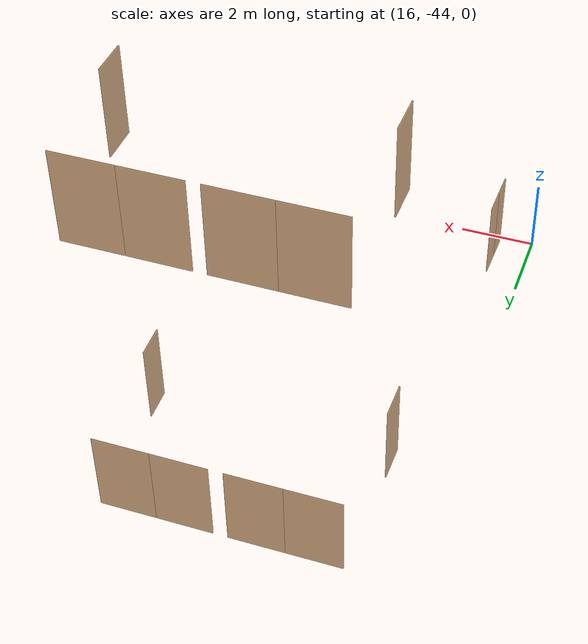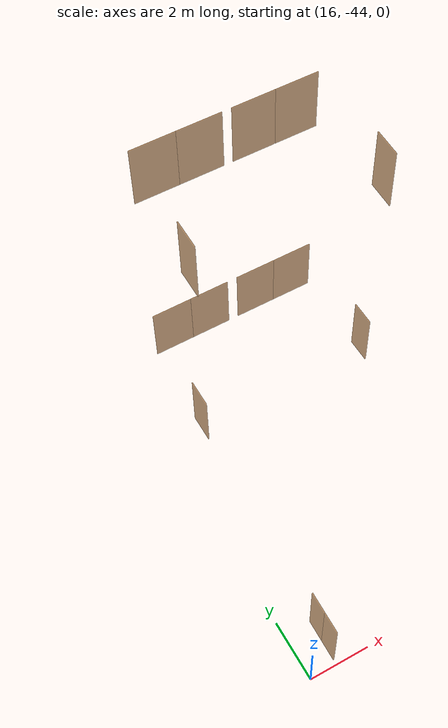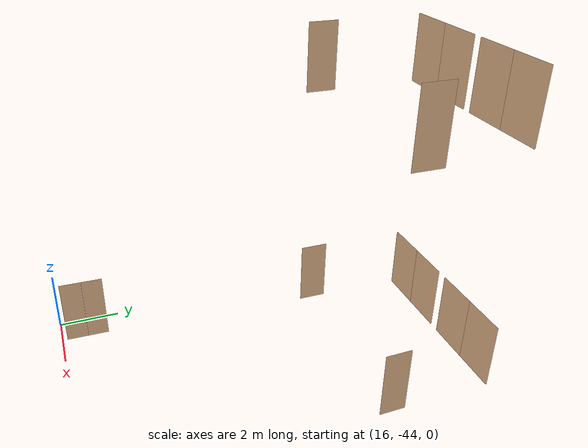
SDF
<sdf version="1.7">
 <world name="sim_world">
  <model name="porta5">
   <pose>18.80251686306724 -31.607002671838153 0.0 0 0 -3.1385629627547886</pose>
   <link name="right">
    <pose>0.7022943984993862 0 1.11 0 0 0</pose>
    <visual name="right_visual">
     <geometry><box><size>1.3945887969987725 0.03 2.2</size></box></geometry>
     <material>
      <ambient>0.5 0.25 0 0.6</ambient>
      <diffuse>0.5 0.25 0 0.6</diffuse>
      <pbr><metal><metalness>0.0</metalness></metal></pbr>
     </material>
    </visual>
    <collision name="right_collision">
     <geometry><box><size>1.3945887969987725 0.03 2.2</size></box></geometry>
     <surface><contact><collide_bitmask>0x02</collide_bitmask></contact></surface>
    </collision>
    <inertial>
     <mass>50.0</mass>
     <inertia><ixx>20.17041666666667</ixx><iyy>28.270324636310352</iyy><izz>8.107407969643681</izz></inertia>
    </inertial>
   </link>
   <joint name="right_joint" type="revolute">
    <parent>world</parent>
    <child>right</child>
    <axis><xyz>0 0 -1</xyz><limit><lower>0</lower><upper>1.57</upper></limit></axis>
    <pose>0.7022943984993862 0 0 0 0 0</pose>
   </joint>
   <link name="left">
    <pose>-0.7022943984993862 0 1.11 0 0 0</pose>
    <visual name="left_visual">
     <geometry><box><size>1.3945887969987725 0.03 2.2</size></box></geometry>
     <material>
      <ambient>0.5 0.25 0 0.6</ambient>
      <diffuse>0.5 0.25 0 0.6</diffuse>
      <pbr><metal><metalness>0.0</metalness></metal></pbr>
     </material>
    </visual>
    <collision name="left_collision">
     <geometry><box><size>1.3945887969987725 0.03 2.2</size></box></geometry>
     <surface><contact><collide_bitmask>0x02</collide_bitmask></contact></surface>
    </collision>
    <inertial>
     <mass>50.0</mass>
     <inertia><ixx>20.17041666666667</ixx><iyy>28.270324636310352</iyy><izz>8.107407969643681</izz></inertia>
    </inertial>
   </link>
   <joint name="left_joint" type="revolute">
    <parent>world</parent>
    <child>left</child>
    <axis><xyz>0 0 -1</xyz><limit><lower>-1.57</lower><upper>0</upper></limit></axis>
    <pose>-0.7022943984993862 0 0 0 0 0</pose>
   </joint>
   <plugin name="register_component" filename="libregister_component.so">
    <component name="Door">
     <v_max_door>0.5</v_max_door>
     <a_max_door>0.3</a_max_door>
     <a_nom_door>0.15</a_nom_door>
     <dx_min_door>0.01</dx_min_door>
     <f_max_door>500.0</f_max_door>
     <ros_interface>true</ros_interface>
     <door name="porta5" type="DoubleSwingDoor" left_joint_name="left_joint" right_joint_name="right_joint"/>
    </component>
   </plugin>
  </model>
  <model name="porta4">
   <pose>21.979988736783717 -31.603509381073565 0.0 0 0 3.141592653589793</pose>
   <link name="right">
    <pose>0.7097223574843223 0 1.11 0 0 0</pose>
    <visual name="right_visual">
     <geometry><box><size>1.4094447149686447 0.03 2.2</size></box></geometry>
     <material>
      <ambient>0.5 0.25 0 0.6</ambient>
      <diffuse>0.5 0.25 0 0.6</diffuse>
      <pbr><metal><metalness>0.0</metalness></metal></pbr>
     </material>
    </visual>
    <collision name="right_collision">
     <geometry><box><size>1.4094447149686447 0.03 2.2</size></box></geometry>
     <surface><contact><collide_bitmask>0x02</collide_bitmask></contact></surface>
    </collision>
    <inertial>
     <mass>50.0</mass>
     <inertia><ixx>20.17041666666667</ixx><iyy>28.443893352304357</iyy><izz>8.280976685637683</izz></inertia>
    </inertial>
   </link>
   <joint name="right_joint" type="revolute">
    <parent>world</parent>
    <child>right</child>
    <axis><xyz>0 0 -1</xyz><limit><lower>0</lower><upper>1.57</upper></limit></axis>
    <pose>0.7097223574843223 0 0 0 0 0</pose>
   </joint>
   <link name="left">
    <pose>-0.7097223574843223 0 1.11 0 0 0</pose>
    <visual name="left_visual">
     <geometry><box><size>1.4094447149686447 0.03 2.2</size></box></geometry>
     <material>
      <ambient>0.5 0.25 0 0.6</ambient>
      <diffuse>0.5 0.25 0 0.6</diffuse>
      <pbr><metal><metalness>0.0</metalness></metal></pbr>
     </material>
    </visual>
    <collision name="left_collision">
     <geometry><box><size>1.4094447149686447 0.03 2.2</size></box></geometry>
     <surface><contact><collide_bitmask>0x02</collide_bitmask></contact></surface>
    </collision>
    <inertial>
     <mass>50.0</mass>
     <inertia><ixx>20.17041666666667</ixx><iyy>28.443893352304357</iyy><izz>8.280976685637683</izz></inertia>
    </inertial>
   </link>
   <joint name="left_joint" type="revolute">
    <parent>world</parent>
    <child>left</child>
    <axis><xyz>0 0 -1</xyz><limit><lower>-1.57</lower><upper>0</upper></limit></axis>
    <pose>-0.7097223574843223 0 0 0 0 0</pose>
   </joint>
   <plugin name="register_component" filename="libregister_component.so">
    <component name="Door">
     <v_max_door>0.5</v_max_door>
     <a_max_door>0.3</a_max_door>
     <a_nom_door>0.15</a_nom_door>
     <dx_min_door>0.01</dx_min_door>
     <f_max_door>500.0</f_max_door>
     <ros_interface>true</ros_interface>
     <door name="porta4" type="DoubleSwingDoor" left_joint_name="left_joint" right_joint_name="right_joint"/>
    </component>
   </plugin>
  </model>
  <model name="porta1">
   <pose>16.90319562004853 -43.14254743465429 0.0 0 0 -1.5848571042310686</pose>
   <link name="right">
    <pose>0.34918575359819504 0 1.11 0 0 0</pose>
    <visual name="right_visual">
     <geometry><box><size>0.6883715071963901 0.03 2.2</size></box></geometry>
     <material>
      <ambient>0.5 0.25 0 0.6</ambient>
      <diffuse>0.5 0.25 0 0.6</diffuse>
      <pbr><metal><metalness>0.0</metalness></metal></pbr>
     </material>
    </visual>
    <collision name="right_collision">
     <geometry><box><size>0.6883715071963901 0.03 2.2</size></box></geometry>
     <surface><contact><collide_bitmask>0x02</collide_bitmask></contact></surface>
    </collision>
    <inertial>
     <mass>50.0</mass>
     <inertia><ixx>20.17041666666667</ixx><iyy>22.141063882999294</iyy><izz>1.978147216332624</izz></inertia>
    </inertial>
   </link>
   <joint name="right_joint" type="revolute">
    <parent>world</parent>
    <child>right</child>
    <axis><xyz>0 0 -1</xyz><limit><lower>0</lower><upper>1.57</upper></limit></axis>
    <pose>0.34918575359819504 0 0 0 0 0</pose>
   </joint>
   <link name="left">
    <pose>-0.34918575359819504 0 1.11 0 0 0</pose>
    <visual name="left_visual">
     <geometry><box><size>0.6883715071963901 0.03 2.2</size></box></geometry>
     <material>
      <ambient>0.5 0.25 0 0.6</ambient>
      <diffuse>0.5 0.25 0 0.6</diffuse>
      <pbr><metal><metalness>0.0</metalness></metal></pbr>
     </material>
    </visual>
    <collision name="left_collision">
     <geometry><box><size>0.6883715071963901 0.03 2.2</size></box></geometry>
     <surface><contact><collide_bitmask>0x02</collide_bitmask></contact></surface>
    </collision>
    <inertial>
     <mass>50.0</mass>
     <inertia><ixx>20.17041666666667</ixx><iyy>22.141063882999294</iyy><izz>1.978147216332624</izz></inertia>
    </inertial>
   </link>
   <joint name="left_joint" type="revolute">
    <parent>world</parent>
    <child>left</child>
    <axis><xyz>0 0 -1</xyz><limit><lower>-1.57</lower><upper>0</upper></limit></axis>
    <pose>-0.34918575359819504 0 0 0 0 0</pose>
   </joint>
   <plugin name="register_component" filename="libregister_component.so">
    <component name="Door">
     <v_max_door>0.5</v_max_door>
     <a_max_door>0.3</a_max_door>
     <a_nom_door>0.15</a_nom_door>
     <dx_min_door>0.01</dx_min_door>
     <f_max_door>500.0</f_max_door>
     <ros_interface>true</ros_interface>
     <door name="porta1" type="DoubleSwingDoor" left_joint_name="left_joint" right_joint_name="right_joint"/>
    </component>
   </plugin>
  </model>
  <model name="porta2">
   <pose>17.312113885513217 -34.947477844067976 0.0 0 0 -1.5707963267948966</pose>
   <link name="right">
    <pose>0 0 1.11 0 0 0</pose>
    <visual name="right_visual">
     <geometry><box><size>0.9286662827575449 0.03 2.2</size></box></geometry>
     <material>
      <ambient>0.5 0.25 0 0.6</ambient>
      <diffuse>0.5 0.25 0 0.6</diffuse>
      <pbr><metal><metalness>0.0</metalness></metal></pbr>
     </material>
    </visual>
    <collision name="right_collision">
     <geometry><box><size>0.9286662827575449 0.03 2.2</size></box></geometry>
     <surface><contact><collide_bitmask>0x02</collide_bitmask></contact></surface>
    </collision>
    <inertial>
     <mass>50.0</mass>
     <inertia><ixx>20.17041666666667</ixx><iyy>23.760087769711323</iyy><izz>3.597171103044652</izz></inertia>
    </inertial>
   </link>
   <joint name="right_joint" type="revolute">
    <parent>world</parent>
    <child>right</child>
    <axis><xyz>0 0 1</xyz><limit><lower>0</lower><upper>1.57</upper></limit></axis>
    <pose>0.46933314137877247 0 0 0 0 0</pose>
   </joint>
   <plugin name="register_component" filename="libregister_component.so">
    <component name="Door">
     <v_max_door>0.5</v_max_door>
     <a_max_door>0.3</a_max_door>
     <a_nom_door>0.15</a_nom_door>
     <dx_min_door>0.01</dx_min_door>
     <f_max_door>500.0</f_max_door>
     <ros_interface>true</ros_interface>
     <door name="porta2" type="SwingDoor" left_joint_name="empty_joint" right_joint_name="right_joint"/>
    </component>
   </plugin>
  </model>
  <model name="porta3">
   <pose>23.41890695990549 -34.929071377457475 0.0 0 0 -1.5492093856857787</pose>
   <link name="right">
    <pose>0 0 1.11 0 0 0</pose>
    <visual name="right_visual">
     <geometry><box><size>0.8362594894300951 0.03 2.2</size></box></geometry>
     <material>
      <ambient>0.5 0.25 0 0.6</ambient>
      <diffuse>0.5 0.25 0 0.6</diffuse>
      <pbr><metal><metalness>0.0</metalness></metal></pbr>
     </material>
    </visual>
    <collision name="right_collision">
     <geometry><box><size>0.8362594894300951 0.03 2.2</size></box></geometry>
     <surface><contact><collide_bitmask>0x02</collide_bitmask></contact></surface>
    </collision>
    <inertial>
     <mass>50.0</mass>
     <inertia><ixx>20.17041666666667</ixx><iyy>23.080541390257853</iyy><izz>2.9176247235911807</izz></inertia>
    </inertial>
   </link>
   <joint name="right_joint" type="prismatic">
    <parent>world</parent>
    <child>right</child>
    <axis>
     <xyz>1 0 0</xyz>
     <limit><lower>0.0</lower><upper>0.8462594894300951</upper><effort>500.0</effort></limit>
    </axis>
   </joint>
   <plugin name="register_component" filename="libregister_component.so">
    <component name="Door">
     <v_max_door>0.2</v_max_door>
     <a_max_door>0.2</a_max_door>
     <a_nom_door>0.08</a_nom_door>
     <dx_min_door>0.001</dx_min_door>
     <f_max_door>100.0</f_max_door>
     <ros_interface>true</ros_interface>
     <door name="porta3" type="SlidingDoor" left_joint_name="empty_joint" right_joint_name="right_joint"/>
    </component>
   </plugin>
  </model>
  <model name="porta12">
   <pose>18.75207572538497 -31.640678202281336 8.0 0 0 -0.002874870555280404</pose>
   <link name="right">
    <pose>0.73597405986856 0 1.11 0 0 0</pose>
    <visual name="right_visual">
     <geometry><box><size>1.46194811973712 0.03 2.2</size></box></geometry>
     <material>
      <ambient>0.5 0.25 0 0.6</ambient>
      <diffuse>0.5 0.25 0 0.6</diffuse>
      <pbr><metal><metalness>0.0</metalness></metal></pbr>
     </material>
    </visual>
    <collision name="right_collision">
     <geometry><box><size>1.46194811973712 0.03 2.2</size></box></geometry>
     <surface><contact><collide_bitmask>0x02</collide_bitmask></contact></surface>
    </collision>
    <inertial>
     <mass>50.0</mass>
     <inertia><ixx>20.17041666666667</ixx><iyy>29.072051270012093</iyy><izz>8.90913460334542</izz></inertia>
    </inertial>
   </link>
   <joint name="right_joint" type="revolute">
    <parent>world</parent>
    <child>right</child>
    <axis><xyz>0 0 1</xyz><limit><lower>0</lower><upper>1.57</upper></limit></axis>
    <pose>0.73597405986856 0 0 0 0 0</pose>
   </joint>
   <link name="left">
    <pose>-0.73597405986856 0 1.11 0 0 0</pose>
    <visual name="left_visual">
     <geometry><box><size>1.46194811973712 0.03 2.2</size></box></geometry>
     <material>
      <ambient>0.5 0.25 0 0.6</ambient>
      <diffuse>0.5 0.25 0 0.6</diffuse>
      <pbr><metal><metalness>0.0</metalness></metal></pbr>
     </material>
    </visual>
    <collision name="left_collision">
     <geometry><box><size>1.46194811973712 0.03 2.2</size></box></geometry>
     <surface><contact><collide_bitmask>0x02</collide_bitmask></contact></surface>
    </collision>
    <inertial>
     <mass>50.0</mass>
     <inertia><ixx>20.17041666666667</ixx><iyy>29.072051270012093</iyy><izz>8.90913460334542</izz></inertia>
    </inertial>
   </link>
   <joint name="left_joint" type="revolute">
    <parent>world</parent>
    <child>left</child>
    <axis><xyz>0 0 1</xyz><limit><lower>-1.57</lower><upper>0</upper></limit></axis>
    <pose>-0.73597405986856 0 0 0 0 0</pose>
   </joint>
   <plugin name="register_component" filename="libregister_component.so">
    <component name="Door">
     <v_max_door>0.5</v_max_door>
     <a_max_door>0.3</a_max_door>
     <a_nom_door>0.15</a_nom_door>
     <dx_min_door>0.01</dx_min_door>
     <f_max_door>500.0</f_max_door>
     <ros_interface>true</ros_interface>
     <door name="porta12" type="DoubleSwingDoor" left_joint_name="left_joint" right_joint_name="right_joint"/>
    </component>
   </plugin>
  </model>
  <model name="porta13">
   <pose>21.945454971282285 -31.64985877953935 8.0 0 0 3.138717783034512</pose>
   <link name="right">
    <pose>0.7129445145165642 0 1.11 0 0 0</pose>
    <visual name="right_visual">
     <geometry><box><size>1.4158890290331283 0.03 2.2</size></box></geometry>
     <material>
      <ambient>0.5 0.25 0 0.6</ambient>
      <diffuse>0.5 0.25 0 0.6</diffuse>
      <pbr><metal><metalness>0.0</metalness></metal></pbr>
     </material>
    </visual>
    <collision name="right_collision">
     <geometry><box><size>1.4158890290331283 0.03 2.2</size></box></geometry>
     <surface><contact><collide_bitmask>0x02</collide_bitmask></contact></surface>
    </collision>
    <inertial>
     <mass>50.0</mass>
     <inertia><ixx>20.17041666666667</ixx><iyy>28.519757260568234</iyy><izz>8.356840593901563</izz></inertia>
    </inertial>
   </link>
   <joint name="right_joint" type="revolute">
    <parent>world</parent>
    <child>right</child>
    <axis><xyz>0 0 -1</xyz><limit><lower>0</lower><upper>1.57</upper></limit></axis>
    <pose>0.7129445145165642 0 0 0 0 0</pose>
   </joint>
   <link name="left">
    <pose>-0.7129445145165642 0 1.11 0 0 0</pose>
    <visual name="left_visual">
     <geometry><box><size>1.4158890290331283 0.03 2.2</size></box></geometry>
     <material>
      <ambient>0.5 0.25 0 0.6</ambient>
      <diffuse>0.5 0.25 0 0.6</diffuse>
      <pbr><metal><metalness>0.0</metalness></metal></pbr>
     </material>
    </visual>
    <collision name="left_collision">
     <geometry><box><size>1.4158890290331283 0.03 2.2</size></box></geometry>
     <surface><contact><collide_bitmask>0x02</collide_bitmask></contact></surface>
    </collision>
    <inertial>
     <mass>50.0</mass>
     <inertia><ixx>20.17041666666667</ixx><iyy>28.519757260568234</iyy><izz>8.356840593901563</izz></inertia>
    </inertial>
   </link>
   <joint name="left_joint" type="revolute">
    <parent>world</parent>
    <child>left</child>
    <axis><xyz>0 0 -1</xyz><limit><lower>-1.57</lower><upper>0</upper></limit></axis>
    <pose>-0.7129445145165642 0 0 0 0 0</pose>
   </joint>
   <plugin name="register_component" filename="libregister_component.so">
    <component name="Door">
     <v_max_door>0.5</v_max_door>
     <a_max_door>0.3</a_max_door>
     <a_nom_door>0.15</a_nom_door>
     <dx_min_door>0.01</dx_min_door>
     <f_max_door>500.0</f_max_door>
     <ros_interface>true</ros_interface>
     <door name="porta13" type="DoubleSwingDoor" left_joint_name="left_joint" right_joint_name="right_joint"/>
    </component>
   </plugin>
  </model>
  <model name="porta15">
   <pose>17.298396633359754 -34.9554291622406 8.0 0 0 1.5679214562396149</pose>
   <link name="right">
    <pose>0 0 1.11 0 0 0</pose>
    <visual name="right_visual">
     <geometry><box><size>0.9627286353935616 0.03 2.2</size></box></geometry>
     <material>
      <ambient>0.5 0.25 0 0.6</ambient>
      <diffuse>0.5 0.25 0 0.6</diffuse>
      <pbr><metal><metalness>0.0</metalness></metal></pbr>
     </material>
    </visual>
    <collision name="right_collision">
     <geometry><box><size>0.9627286353935616 0.03 2.2</size></box></geometry>
     <surface><contact><collide_bitmask>0x02</collide_bitmask></contact></surface>
    </collision>
    <inertial>
     <mass>50.0</mass>
     <inertia><ixx>20.17041666666667</ixx><iyy>24.028526772528128</iyy><izz>3.8656101058614554</izz></inertia>
    </inertial>
   </link>
   <joint name="right_joint" type="revolute">
    <parent>world</parent>
    <child>right</child>
    <axis><xyz>0 0 1</xyz><limit><lower>0</lower><upper>1.57</upper></limit></axis>
    <pose>0.4863643176967808 0 0 0 0 0</pose>
   </joint>
   <plugin name="register_component" filename="libregister_component.so">
    <component name="Door">
     <v_max_door>0.5</v_max_door>
     <a_max_door>0.3</a_max_door>
     <a_nom_door>0.15</a_nom_door>
     <dx_min_door>0.01</dx_min_door>
     <f_max_door>500.0</f_max_door>
     <ros_interface>true</ros_interface>
     <door name="porta15" type="SwingDoor" left_joint_name="empty_joint" right_joint_name="right_joint"/>
    </component>
   </plugin>
  </model>
  <model name="porta16">
   <pose>23.588520939635607 -34.91210013049523 8.0 0 0 -1.5736711973501782</pose>
   <link name="right">
    <pose>0 0 1.11 0 0 0</pose>
    <visual name="right_visual">
     <geometry><box><size>0.9294742494456845 0.03 2.2</size></box></geometry>
     <material>
      <ambient>0.5 0.25 0 0.6</ambient>
      <diffuse>0.5 0.25 0 0.6</diffuse>
      <pbr><metal><metalness>0.0</metalness></metal></pbr>
     </material>
    </visual>
    <collision name="right_collision">
     <geometry><box><size>0.9294742494456845 0.03 2.2</size></box></geometry>
     <surface><contact><collide_bitmask>0x02</collide_bitmask></contact></surface>
    </collision>
    <inertial>
     <mass>50.0</mass>
     <inertia><ixx>20.17041666666667</ixx><iyy>23.766343251594247</iyy><izz>3.6034265849275773</izz></inertia>
    </inertial>
   </link>
   <joint name="right_joint" type="prismatic">
    <parent>world</parent>
    <child>right</child>
    <axis>
     <xyz>1 0 0</xyz>
     <limit><lower>0.0</lower><upper>0.9394742494456845</upper><effort>500.0</effort></limit>
    </axis>
   </joint>
   <plugin name="register_component" filename="libregister_component.so">
    <component name="Door">
     <v_max_door>0.2</v_max_door>
     <a_max_door>0.2</a_max_door>
     <a_nom_door>0.08</a_nom_door>
     <dx_min_door>0.001</dx_min_door>
     <f_max_door>100.0</f_max_door>
     <ros_interface>true</ros_interface>
     <door name="porta16" type="SlidingDoor" left_joint_name="empty_joint" right_joint_name="right_joint"/>
    </component>
   </plugin>
  </model>
 </world>
</sdf>
